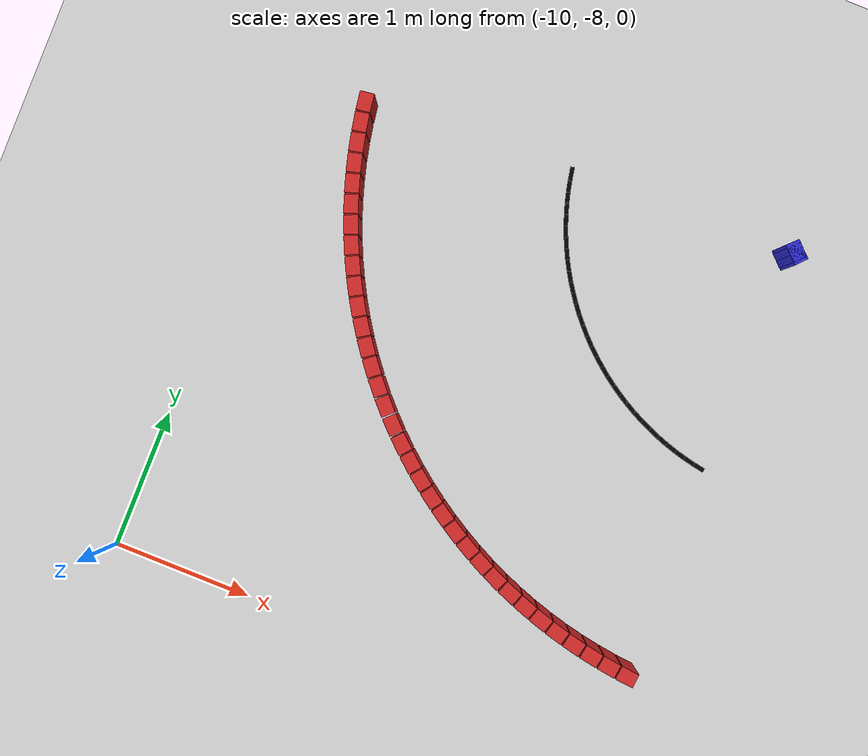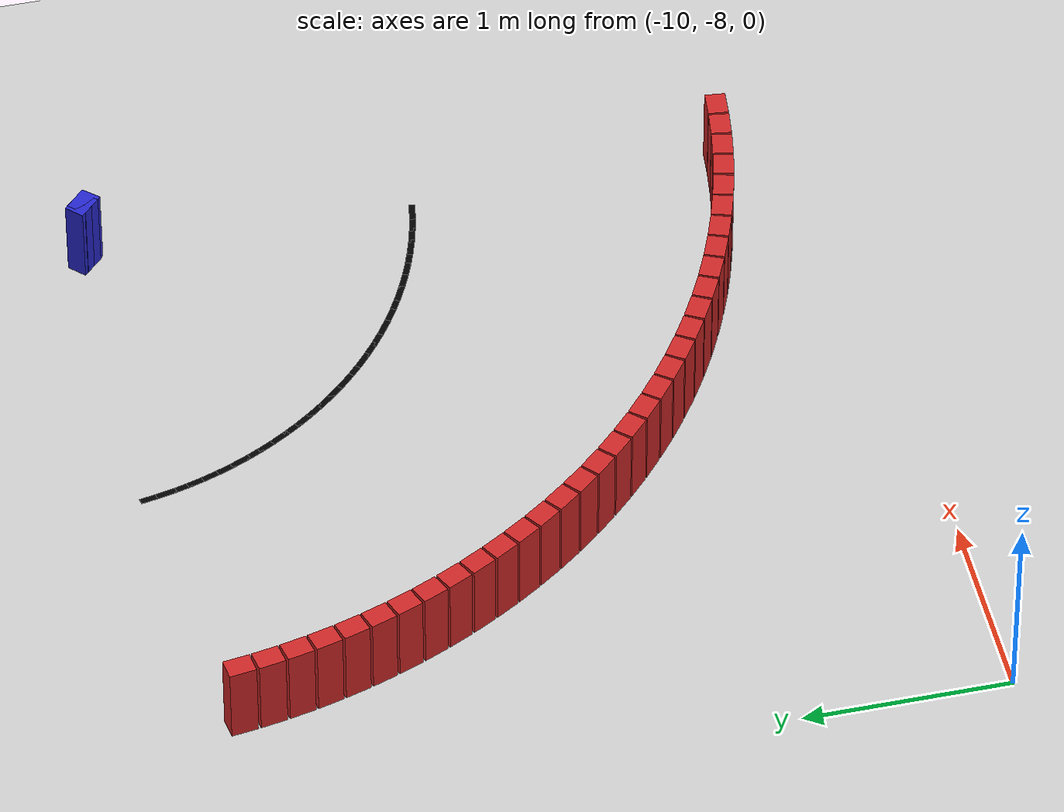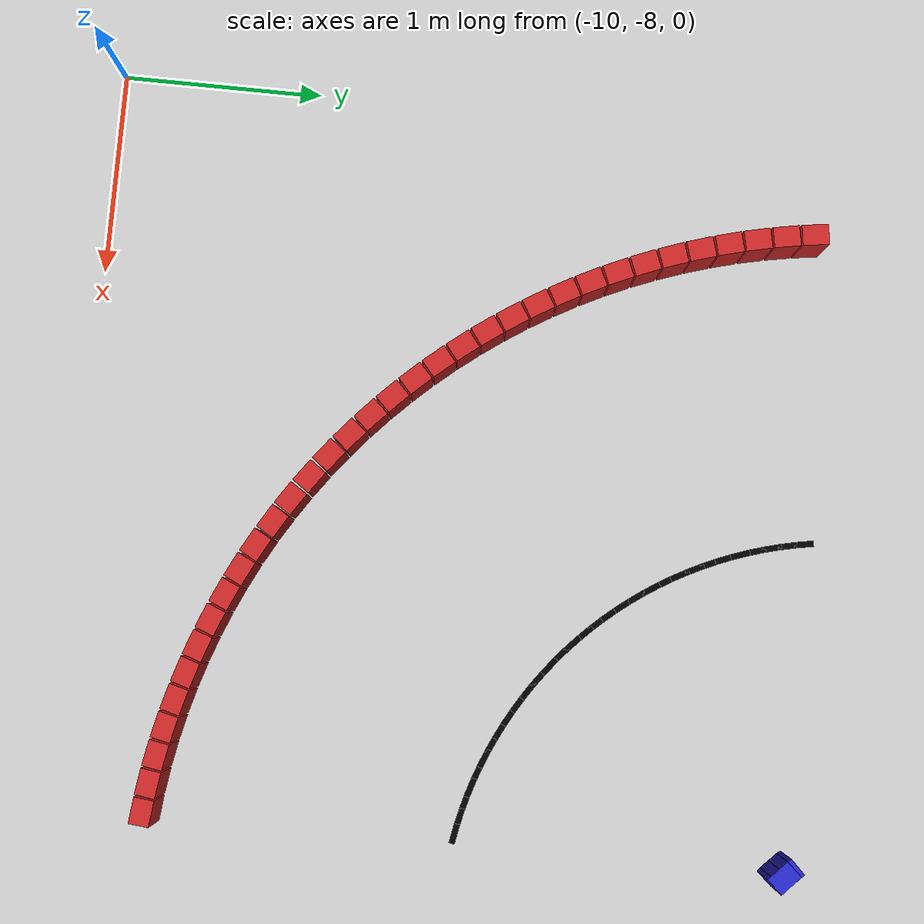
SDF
<sdf version="1.6">
 <world name="new_race_track">
  <include><uri>model://ground_plane</uri></include>
  <include><uri>model://sun</uri></include>
  <model name="race_track">
   <static>true</static>
   <link name="wall_link_20">
    <collision name="c"><geometry><box><size>0.1305 0.1 0.4</size></box></geometry></collision>
    <visual name="v">
     <geometry><box><size>0.1305 0.1 0.4</size></box></geometry>
     <material><ambient>0.15 0.15 0.8 1</ambient><diffuse>0.15 0.15 0.8 1</diffuse></material>
    </visual>
    <pose>-6.3533 -4.3533 0.200 0 0 -0.7854</pose>
   </link>
   <link name="wall_link_21">
    <collision name="c"><geometry><box><size>0.1305 0.1 0.4</size></box></geometry></collision>
    <visual name="v">
     <geometry><box><size>0.1305 0.1 0.4</size></box></geometry>
     <material><ambient>0.15 0.15 0.8 1</ambient><diffuse>0.15 0.15 0.8 1</diffuse></material>
    </visual>
    <pose>-6.3388 -4.3672 0.200 0 0 -0.7451</pose>
   </link>
   <link name="wall_link_416">
    <collision name="c"><geometry><box><size>0.1305 0.1 0.4</size></box></geometry></collision>
    <visual name="v">
     <geometry><box><size>0.1305 0.1 0.4</size></box></geometry>
     <material><ambient>0.8 0.15 0.15 1</ambient><diffuse>0.8 0.15 0.15 1</diffuse></material>
    </visual>
    <pose>-9.4649 -4.4917 0.200 0 0 -1.4298</pose>
   </link>
   <link name="wall_link_417">
    <collision name="c"><geometry><box><size>0.1305 0.1 0.4</size></box></geometry></collision>
    <visual name="v">
     <geometry><box><size>0.1305 0.1 0.4</size></box></geometry>
     <material><ambient>0.8 0.15 0.15 1</ambient><diffuse>0.8 0.15 0.15 1</diffuse></material>
    </visual>
    <pose>-9.4423 -4.6308 0.200 0 0 -1.3896</pose>
   </link>
   <link name="wall_link_418">
    <collision name="c"><geometry><box><size>0.1305 0.1 0.4</size></box></geometry></collision>
    <visual name="v">
     <geometry><box><size>0.1305 0.1 0.4</size></box></geometry>
     <material><ambient>0.8 0.15 0.15 1</ambient><diffuse>0.8 0.15 0.15 1</diffuse></material>
    </visual>
    <pose>-9.4141 -4.7689 0.200 0 0 -1.3493</pose>
   </link>
   <link name="wall_link_419">
    <collision name="c"><geometry><box><size>0.1305 0.1 0.4</size></box></geometry></collision>
    <visual name="v">
     <geometry><box><size>0.1305 0.1 0.4</size></box></geometry>
     <material><ambient>0.8 0.15 0.15 1</ambient><diffuse>0.8 0.15 0.15 1</diffuse></material>
    </visual>
    <pose>-9.3803 -4.9058 0.200 0 0 -1.3090</pose>
   </link>
   <link name="wall_link_420">
    <collision name="c"><geometry><box><size>0.1305 0.1 0.4</size></box></geometry></collision>
    <visual name="v">
     <geometry><box><size>0.1305 0.1 0.4</size></box></geometry>
     <material><ambient>0.8 0.15 0.15 1</ambient><diffuse>0.8 0.15 0.15 1</diffuse></material>
    </visual>
    <pose>-9.3411 -5.0411 0.200 0 0 -1.2687</pose>
   </link>
   <link name="wall_link_421">
    <collision name="c"><geometry><box><size>0.1305 0.1 0.4</size></box></geometry></collision>
    <visual name="v">
     <geometry><box><size>0.1305 0.1 0.4</size></box></geometry>
     <material><ambient>0.8 0.15 0.15 1</ambient><diffuse>0.8 0.15 0.15 1</diffuse></material>
    </visual>
    <pose>-9.2965 -5.1748 0.200 0 0 -1.2284</pose>
   </link>
   <link name="wall_link_422">
    <collision name="c"><geometry><box><size>0.1305 0.1 0.4</size></box></geometry></collision>
    <visual name="v">
     <geometry><box><size>0.1305 0.1 0.4</size></box></geometry>
     <material><ambient>0.8 0.15 0.15 1</ambient><diffuse>0.8 0.15 0.15 1</diffuse></material>
    </visual>
    <pose>-9.2465 -5.3066 0.200 0 0 -1.1882</pose>
   </link>
   <link name="wall_link_423">
    <collision name="c"><geometry><box><size>0.1305 0.1 0.4</size></box></geometry></collision>
    <visual name="v">
     <geometry><box><size>0.1305 0.1 0.4</size></box></geometry>
     <material><ambient>0.8 0.15 0.15 1</ambient><diffuse>0.8 0.15 0.15 1</diffuse></material>
    </visual>
    <pose>-9.1913 -5.4363 0.200 0 0 -1.1479</pose>
   </link>
   <link name="wall_link_424">
    <collision name="c"><geometry><box><size>0.1305 0.1 0.4</size></box></geometry></collision>
    <visual name="v">
     <geometry><box><size>0.1305 0.1 0.4</size></box></geometry>
     <material><ambient>0.8 0.15 0.15 1</ambient><diffuse>0.8 0.15 0.15 1</diffuse></material>
    </visual>
    <pose>-9.1309 -5.5636 0.200 0 0 -1.1076</pose>
   </link>
   <link name="wall_link_425">
    <collision name="c"><geometry><box><size>0.1305 0.1 0.4</size></box></geometry></collision>
    <visual name="v">
     <geometry><box><size>0.1305 0.1 0.4</size></box></geometry>
     <material><ambient>0.8 0.15 0.15 1</ambient><diffuse>0.8 0.15 0.15 1</diffuse></material>
    </visual>
    <pose>-9.0654 -5.6884 0.200 0 0 -1.0673</pose>
   </link>
   <link name="wall_link_426">
    <collision name="c"><geometry><box><size>0.1305 0.1 0.4</size></box></geometry></collision>
    <visual name="v">
     <geometry><box><size>0.1305 0.1 0.4</size></box></geometry>
     <material><ambient>0.8 0.15 0.15 1</ambient><diffuse>0.8 0.15 0.15 1</diffuse></material>
    </visual>
    <pose>-8.9949 -5.8105 0.200 0 0 -1.0271</pose>
   </link>
   <link name="wall_link_427">
    <collision name="c"><geometry><box><size>0.1305 0.1 0.4</size></box></geometry></collision>
    <visual name="v">
     <geometry><box><size>0.1305 0.1 0.4</size></box></geometry>
     <material><ambient>0.8 0.15 0.15 1</ambient><diffuse>0.8 0.15 0.15 1</diffuse></material>
    </visual>
    <pose>-8.9196 -5.9296 0.200 0 0 -0.9868</pose>
   </link>
   <link name="wall_link_428">
    <collision name="c"><geometry><box><size>0.1305 0.1 0.4</size></box></geometry></collision>
    <visual name="v">
     <geometry><box><size>0.1305 0.1 0.4</size></box></geometry>
     <material><ambient>0.8 0.15 0.15 1</ambient><diffuse>0.8 0.15 0.15 1</diffuse></material>
    </visual>
    <pose>-8.8395 -6.0456 0.200 0 0 -0.9465</pose>
   </link>
   <link name="wall_link_429">
    <collision name="c"><geometry><box><size>0.1305 0.1 0.4</size></box></geometry></collision>
    <visual name="v">
     <geometry><box><size>0.1305 0.1 0.4</size></box></geometry>
     <material><ambient>0.8 0.15 0.15 1</ambient><diffuse>0.8 0.15 0.15 1</diffuse></material>
    </visual>
    <pose>-8.7548 -6.1583 0.200 0 0 -0.9062</pose>
   </link>
   <link name="wall_link_430">
    <collision name="c"><geometry><box><size>0.1305 0.1 0.4</size></box></geometry></collision>
    <visual name="v">
     <geometry><box><size>0.1305 0.1 0.4</size></box></geometry>
     <material><ambient>0.8 0.15 0.15 1</ambient><diffuse>0.8 0.15 0.15 1</diffuse></material>
    </visual>
    <pose>-8.6657 -6.2674 0.200 0 0 -0.8660</pose>
   </link>
   <link name="wall_link_431">
    <collision name="c"><geometry><box><size>0.1305 0.1 0.4</size></box></geometry></collision>
    <visual name="v">
     <geometry><box><size>0.1305 0.1 0.4</size></box></geometry>
     <material><ambient>0.8 0.15 0.15 1</ambient><diffuse>0.8 0.15 0.15 1</diffuse></material>
    </visual>
    <pose>-8.5722 -6.3729 0.200 0 0 -0.8257</pose>
   </link>
   <link name="wall_link_432">
    <collision name="c"><geometry><box><size>0.1305 0.1 0.4</size></box></geometry></collision>
    <visual name="v">
     <geometry><box><size>0.1305 0.1 0.4</size></box></geometry>
     <material><ambient>0.8 0.15 0.15 1</ambient><diffuse>0.8 0.15 0.15 1</diffuse></material>
    </visual>
    <pose>-8.4746 -6.4746 0.200 0 0 -0.7854</pose>
   </link>
   <link name="wall_link_433">
    <collision name="c"><geometry><box><size>0.1305 0.1 0.4</size></box></geometry></collision>
    <visual name="v">
     <geometry><box><size>0.1305 0.1 0.4</size></box></geometry>
     <material><ambient>0.8 0.15 0.15 1</ambient><diffuse>0.8 0.15 0.15 1</diffuse></material>
    </visual>
    <pose>-8.3729 -6.5722 0.200 0 0 -0.7451</pose>
   </link>
   <link name="wall_link_434">
    <collision name="c"><geometry><box><size>0.1305 0.1 0.4</size></box></geometry></collision>
    <visual name="v">
     <geometry><box><size>0.1305 0.1 0.4</size></box></geometry>
     <material><ambient>0.8 0.15 0.15 1</ambient><diffuse>0.8 0.15 0.15 1</diffuse></material>
    </visual>
    <pose>-8.2674 -6.6657 0.200 0 0 -0.7048</pose>
   </link>
   <link name="wall_link_435">
    <collision name="c"><geometry><box><size>0.1305 0.1 0.4</size></box></geometry></collision>
    <visual name="v">
     <geometry><box><size>0.1305 0.1 0.4</size></box></geometry>
     <material><ambient>0.8 0.15 0.15 1</ambient><diffuse>0.8 0.15 0.15 1</diffuse></material>
    </visual>
    <pose>-8.1583 -6.7548 0.200 0 0 -0.6646</pose>
   </link>
   <link name="wall_link_436">
    <collision name="c"><geometry><box><size>0.1305 0.1 0.4</size></box></geometry></collision>
    <visual name="v">
     <geometry><box><size>0.1305 0.1 0.4</size></box></geometry>
     <material><ambient>0.8 0.15 0.15 1</ambient><diffuse>0.8 0.15 0.15 1</diffuse></material>
    </visual>
    <pose>-8.0456 -6.8395 0.200 0 0 -0.6243</pose>
   </link>
   <link name="wall_link_437">
    <collision name="c"><geometry><box><size>0.1305 0.1 0.4</size></box></geometry></collision>
    <visual name="v">
     <geometry><box><size>0.1305 0.1 0.4</size></box></geometry>
     <material><ambient>0.8 0.15 0.15 1</ambient><diffuse>0.8 0.15 0.15 1</diffuse></material>
    </visual>
    <pose>-7.9296 -6.9196 0.200 0 0 -0.5840</pose>
   </link>
   <link name="wall_link_438">
    <collision name="c"><geometry><box><size>0.1305 0.1 0.4</size></box></geometry></collision>
    <visual name="v">
     <geometry><box><size>0.1305 0.1 0.4</size></box></geometry>
     <material><ambient>0.8 0.15 0.15 1</ambient><diffuse>0.8 0.15 0.15 1</diffuse></material>
    </visual>
    <pose>-7.8105 -6.9949 0.200 0 0 -0.5437</pose>
   </link>
   <link name="wall_link_439">
    <collision name="c"><geometry><box><size>0.1305 0.1 0.4</size></box></geometry></collision>
    <visual name="v">
     <geometry><box><size>0.1305 0.1 0.4</size></box></geometry>
     <material><ambient>0.8 0.15 0.15 1</ambient><diffuse>0.8 0.15 0.15 1</diffuse></material>
    </visual>
    <pose>-7.6884 -7.0654 0.200 0 0 -0.5035</pose>
   </link>
   <link name="wall_link_440">
    <collision name="c"><geometry><box><size>0.1305 0.1 0.4</size></box></geometry></collision>
    <visual name="v">
     <geometry><box><size>0.1305 0.1 0.4</size></box></geometry>
     <material><ambient>0.8 0.15 0.15 1</ambient><diffuse>0.8 0.15 0.15 1</diffuse></material>
    </visual>
    <pose>-7.5636 -7.1309 0.200 0 0 -0.4632</pose>
   </link>
   <link name="wall_link_441">
    <collision name="c"><geometry><box><size>0.1305 0.1 0.4</size></box></geometry></collision>
    <visual name="v">
     <geometry><box><size>0.1305 0.1 0.4</size></box></geometry>
     <material><ambient>0.8 0.15 0.15 1</ambient><diffuse>0.8 0.15 0.15 1</diffuse></material>
    </visual>
    <pose>-7.4363 -7.1913 0.200 0 0 -0.4229</pose>
   </link>
   <link name="wall_link_442">
    <collision name="c"><geometry><box><size>0.1305 0.1 0.4</size></box></geometry></collision>
    <visual name="v">
     <geometry><box><size>0.1305 0.1 0.4</size></box></geometry>
     <material><ambient>0.8 0.15 0.15 1</ambient><diffuse>0.8 0.15 0.15 1</diffuse></material>
    </visual>
    <pose>-7.3066 -7.2465 0.200 0 0 -0.3826</pose>
   </link>
   <link name="wall_link_443">
    <collision name="c"><geometry><box><size>0.1305 0.1 0.4</size></box></geometry></collision>
    <visual name="v">
     <geometry><box><size>0.1305 0.1 0.4</size></box></geometry>
     <material><ambient>0.8 0.15 0.15 1</ambient><diffuse>0.8 0.15 0.15 1</diffuse></material>
    </visual>
    <pose>-7.1748 -7.2965 0.200 0 0 -0.3424</pose>
   </link>
   <link name="wall_link_444">
    <collision name="c"><geometry><box><size>0.1305 0.1 0.4</size></box></geometry></collision>
    <visual name="v">
     <geometry><box><size>0.1305 0.1 0.4</size></box></geometry>
     <material><ambient>0.8 0.15 0.15 1</ambient><diffuse>0.8 0.15 0.15 1</diffuse></material>
    </visual>
    <pose>-7.0411 -7.3411 0.200 0 0 -0.3021</pose>
   </link>
   <link name="wall_link_445">
    <collision name="c"><geometry><box><size>0.1305 0.1 0.4</size></box></geometry></collision>
    <visual name="v">
     <geometry><box><size>0.1305 0.1 0.4</size></box></geometry>
     <material><ambient>0.8 0.15 0.15 1</ambient><diffuse>0.8 0.15 0.15 1</diffuse></material>
    </visual>
    <pose>-6.9058 -7.3803 0.200 0 0 -0.2618</pose>
   </link>
   <link name="wall_link_446">
    <collision name="c"><geometry><box><size>0.1305 0.1 0.4</size></box></geometry></collision>
    <visual name="v">
     <geometry><box><size>0.1305 0.1 0.4</size></box></geometry>
     <material><ambient>0.8 0.15 0.15 1</ambient><diffuse>0.8 0.15 0.15 1</diffuse></material>
    </visual>
    <pose>-6.7689 -7.4141 0.200 0 0 -0.2215</pose>
   </link>
   <link name="wall_link_447">
    <collision name="c"><geometry><box><size>0.1305 0.1 0.4</size></box></geometry></collision>
    <visual name="v">
     <geometry><box><size>0.1305 0.1 0.4</size></box></geometry>
     <material><ambient>0.8 0.15 0.15 1</ambient><diffuse>0.8 0.15 0.15 1</diffuse></material>
    </visual>
    <pose>-6.6308 -7.4423 0.200 0 0 -0.1812</pose>
   </link>
   <link name="wall_link_448">
    <collision name="c"><geometry><box><size>0.1305 0.1 0.4</size></box></geometry></collision>
    <visual name="v">
     <geometry><box><size>0.1305 0.1 0.4</size></box></geometry>
     <material><ambient>0.8 0.15 0.15 1</ambient><diffuse>0.8 0.15 0.15 1</diffuse></material>
    </visual>
    <pose>-6.4917 -7.4649 0.200 0 0 -0.1410</pose>
   </link>
   <link name="wall_link_449">
    <collision name="c"><geometry><box><size>0.1305 0.1 0.4</size></box></geometry></collision>
    <visual name="v">
     <geometry><box><size>0.1305 0.1 0.4</size></box></geometry>
     <material><ambient>0.8 0.15 0.15 1</ambient><diffuse>0.8 0.15 0.15 1</diffuse></material>
    </visual>
    <pose>-6.3518 -7.4819 0.200 0 0 -0.1007</pose>
   </link>
   <link name="line_link_878">
    <visual name="v">
     <geometry><box><size>0.1005 0.03 0.002</size></box></geometry>
     <material><ambient>0 0 0 1</ambient><diffuse>0 0 0 1</diffuse></material>
    </visual>
    <pose>-7.9668 -4.3604 0.002 0 0 -1.3896</pose>
   </link>
   <link name="line_link_879">
    <visual name="v">
     <geometry><box><size>0.1005 0.03 0.002</size></box></geometry>
     <material><ambient>0 0 0 1</ambient><diffuse>0 0 0 1</diffuse></material>
    </visual>
    <pose>-7.9507 -4.4393 0.002 0 0 -1.3493</pose>
   </link>
   <link name="line_link_880">
    <visual name="v">
     <geometry><box><size>0.1005 0.03 0.002</size></box></geometry>
     <material><ambient>0 0 0 1</ambient><diffuse>0 0 0 1</diffuse></material>
    </visual>
    <pose>-7.9315 -4.5175 0.002 0 0 -1.3090</pose>
   </link>
   <link name="line_link_881">
    <visual name="v">
     <geometry><box><size>0.1005 0.03 0.002</size></box></geometry>
     <material><ambient>0 0 0 1</ambient><diffuse>0 0 0 1</diffuse></material>
    </visual>
    <pose>-7.9091 -4.5949 0.002 0 0 -1.2687</pose>
   </link>
   <link name="line_link_882">
    <visual name="v">
     <geometry><box><size>0.1005 0.03 0.002</size></box></geometry>
     <material><ambient>0 0 0 1</ambient><diffuse>0 0 0 1</diffuse></material>
    </visual>
    <pose>-7.8836 -4.6713 0.002 0 0 -1.2284</pose>
   </link>
   <link name="line_link_883">
    <visual name="v">
     <geometry><box><size>0.1005 0.03 0.002</size></box></geometry>
     <material><ambient>0 0 0 1</ambient><diffuse>0 0 0 1</diffuse></material>
    </visual>
    <pose>-7.8550 -4.7466 0.002 0 0 -1.1882</pose>
   </link>
   <link name="line_link_884">
    <visual name="v">
     <geometry><box><size>0.1005 0.03 0.002</size></box></geometry>
     <material><ambient>0 0 0 1</ambient><diffuse>0 0 0 1</diffuse></material>
    </visual>
    <pose>-7.8234 -4.8207 0.002 0 0 -1.1479</pose>
   </link>
   <link name="line_link_885">
    <visual name="v">
     <geometry><box><size>0.1005 0.03 0.002</size></box></geometry>
     <material><ambient>0 0 0 1</ambient><diffuse>0 0 0 1</diffuse></material>
    </visual>
    <pose>-7.7889 -4.8934 0.002 0 0 -1.1076</pose>
   </link>
   <link name="line_link_886">
    <visual name="v">
     <geometry><box><size>0.1005 0.03 0.002</size></box></geometry>
     <material><ambient>0 0 0 1</ambient><diffuse>0 0 0 1</diffuse></material>
    </visual>
    <pose>-7.7515 -4.9647 0.002 0 0 -1.0673</pose>
   </link>
   <link name="line_link_887">
    <visual name="v">
     <geometry><box><size>0.1005 0.03 0.002</size></box></geometry>
     <material><ambient>0 0 0 1</ambient><diffuse>0 0 0 1</diffuse></material>
    </visual>
    <pose>-7.7112 -5.0345 0.002 0 0 -1.0271</pose>
   </link>
   <link name="line_link_888">
    <visual name="v">
     <geometry><box><size>0.1005 0.03 0.002</size></box></geometry>
     <material><ambient>0 0 0 1</ambient><diffuse>0 0 0 1</diffuse></material>
    </visual>
    <pose>-7.6682 -5.1025 0.002 0 0 -0.9868</pose>
   </link>
   <link name="line_link_889">
    <visual name="v">
     <geometry><box><size>0.1005 0.03 0.002</size></box></geometry>
     <material><ambient>0 0 0 1</ambient><diffuse>0 0 0 1</diffuse></material>
    </visual>
    <pose>-7.6224 -5.1688 0.002 0 0 -0.9465</pose>
   </link>
   <link name="line_link_890">
    <visual name="v">
     <geometry><box><size>0.1005 0.03 0.002</size></box></geometry>
     <material><ambient>0 0 0 1</ambient><diffuse>0 0 0 1</diffuse></material>
    </visual>
    <pose>-7.5740 -5.2332 0.002 0 0 -0.9062</pose>
   </link>
   <link name="line_link_891">
    <visual name="v">
     <geometry><box><size>0.1005 0.03 0.002</size></box></geometry>
     <material><ambient>0 0 0 1</ambient><diffuse>0 0 0 1</diffuse></material>
    </visual>
    <pose>-7.5231 -5.2956 0.002 0 0 -0.8660</pose>
   </link>
   <link name="line_link_892">
    <visual name="v">
     <geometry><box><size>0.1005 0.03 0.002</size></box></geometry>
     <material><ambient>0 0 0 1</ambient><diffuse>0 0 0 1</diffuse></material>
    </visual>
    <pose>-7.4697 -5.3558 0.002 0 0 -0.8257</pose>
   </link>
   <link name="line_link_893">
    <visual name="v">
     <geometry><box><size>0.1005 0.03 0.002</size></box></geometry>
     <material><ambient>0 0 0 1</ambient><diffuse>0 0 0 1</diffuse></material>
    </visual>
    <pose>-7.4139 -5.4139 0.002 0 0 -0.7854</pose>
   </link>
   <link name="line_link_894">
    <visual name="v">
     <geometry><box><size>0.1005 0.03 0.002</size></box></geometry>
     <material><ambient>0 0 0 1</ambient><diffuse>0 0 0 1</diffuse></material>
    </visual>
    <pose>-7.3558 -5.4697 0.002 0 0 -0.7451</pose>
   </link>
   <link name="line_link_895">
    <visual name="v">
     <geometry><box><size>0.1005 0.03 0.002</size></box></geometry>
     <material><ambient>0 0 0 1</ambient><diffuse>0 0 0 1</diffuse></material>
    </visual>
    <pose>-7.2956 -5.5231 0.002 0 0 -0.7048</pose>
   </link>
   <link name="line_link_896">
    <visual name="v">
     <geometry><box><size>0.1005 0.03 0.002</size></box></geometry>
     <material><ambient>0 0 0 1</ambient><diffuse>0 0 0 1</diffuse></material>
    </visual>
    <pose>-7.2332 -5.5740 0.002 0 0 -0.6646</pose>
   </link>
   <link name="line_link_897">
    <visual name="v">
     <geometry><box><size>0.1005 0.03 0.002</size></box></geometry>
     <material><ambient>0 0 0 1</ambient><diffuse>0 0 0 1</diffuse></material>
    </visual>
    <pose>-7.1688 -5.6224 0.002 0 0 -0.6243</pose>
   </link>
   <link name="line_link_898">
    <visual name="v">
     <geometry><box><size>0.1005 0.03 0.002</size></box></geometry>
     <material><ambient>0 0 0 1</ambient><diffuse>0 0 0 1</diffuse></material>
    </visual>
    <pose>-7.1025 -5.6682 0.002 0 0 -0.5840</pose>
   </link>
   <link name="line_link_899">
    <visual name="v">
     <geometry><box><size>0.1005 0.03 0.002</size></box></geometry>
     <material><ambient>0 0 0 1</ambient><diffuse>0 0 0 1</diffuse></material>
    </visual>
    <pose>-7.0345 -5.7112 0.002 0 0 -0.5437</pose>
   </link>
   <link name="line_link_900">
    <visual name="v">
     <geometry><box><size>0.1005 0.03 0.002</size></box></geometry>
     <material><ambient>0 0 0 1</ambient><diffuse>0 0 0 1</diffuse></material>
    </visual>
    <pose>-6.9647 -5.7515 0.002 0 0 -0.5035</pose>
   </link>
   <link name="line_link_901">
    <visual name="v">
     <geometry><box><size>0.1005 0.03 0.002</size></box></geometry>
     <material><ambient>0 0 0 1</ambient><diffuse>0 0 0 1</diffuse></material>
    </visual>
    <pose>-6.8934 -5.7889 0.002 0 0 -0.4632</pose>
   </link>
   <link name="line_link_902">
    <visual name="v">
     <geometry><box><size>0.1005 0.03 0.002</size></box></geometry>
     <material><ambient>0 0 0 1</ambient><diffuse>0 0 0 1</diffuse></material>
    </visual>
    <pose>-6.8207 -5.8234 0.002 0 0 -0.4229</pose>
   </link>
   <link name="line_link_903">
    <visual name="v">
     <geometry><box><size>0.1005 0.03 0.002</size></box></geometry>
     <material><ambient>0 0 0 1</ambient><diffuse>0 0 0 1</diffuse></material>
    </visual>
    <pose>-6.7466 -5.8550 0.002 0 0 -0.3826</pose>
   </link>
   <link name="line_link_904">
    <visual name="v">
     <geometry><box><size>0.1005 0.03 0.002</size></box></geometry>
     <material><ambient>0 0 0 1</ambient><diffuse>0 0 0 1</diffuse></material>
    </visual>
    <pose>-6.6713 -5.8836 0.002 0 0 -0.3424</pose>
   </link>
   <link name="line_link_905">
    <visual name="v">
     <geometry><box><size>0.1005 0.03 0.002</size></box></geometry>
     <material><ambient>0 0 0 1</ambient><diffuse>0 0 0 1</diffuse></material>
    </visual>
    <pose>-6.5949 -5.9091 0.002 0 0 -0.3021</pose>
   </link>
   <link name="line_link_906">
    <visual name="v">
     <geometry><box><size>0.1005 0.03 0.002</size></box></geometry>
     <material><ambient>0 0 0 1</ambient><diffuse>0 0 0 1</diffuse></material>
    </visual>
    <pose>-6.5175 -5.9315 0.002 0 0 -0.2618</pose>
   </link>
   <link name="line_link_907">
    <visual name="v">
     <geometry><box><size>0.1005 0.03 0.002</size></box></geometry>
     <material><ambient>0 0 0 1</ambient><diffuse>0 0 0 1</diffuse></material>
    </visual>
    <pose>-6.4393 -5.9507 0.002 0 0 -0.2215</pose>
   </link>
   <link name="line_link_908">
    <visual name="v">
     <geometry><box><size>0.1005 0.03 0.002</size></box></geometry>
     <material><ambient>0 0 0 1</ambient><diffuse>0 0 0 1</diffuse></material>
    </visual>
    <pose>-6.3604 -5.9668 0.002 0 0 -0.1812</pose>
   </link>
  </model>
 </world>
</sdf>
